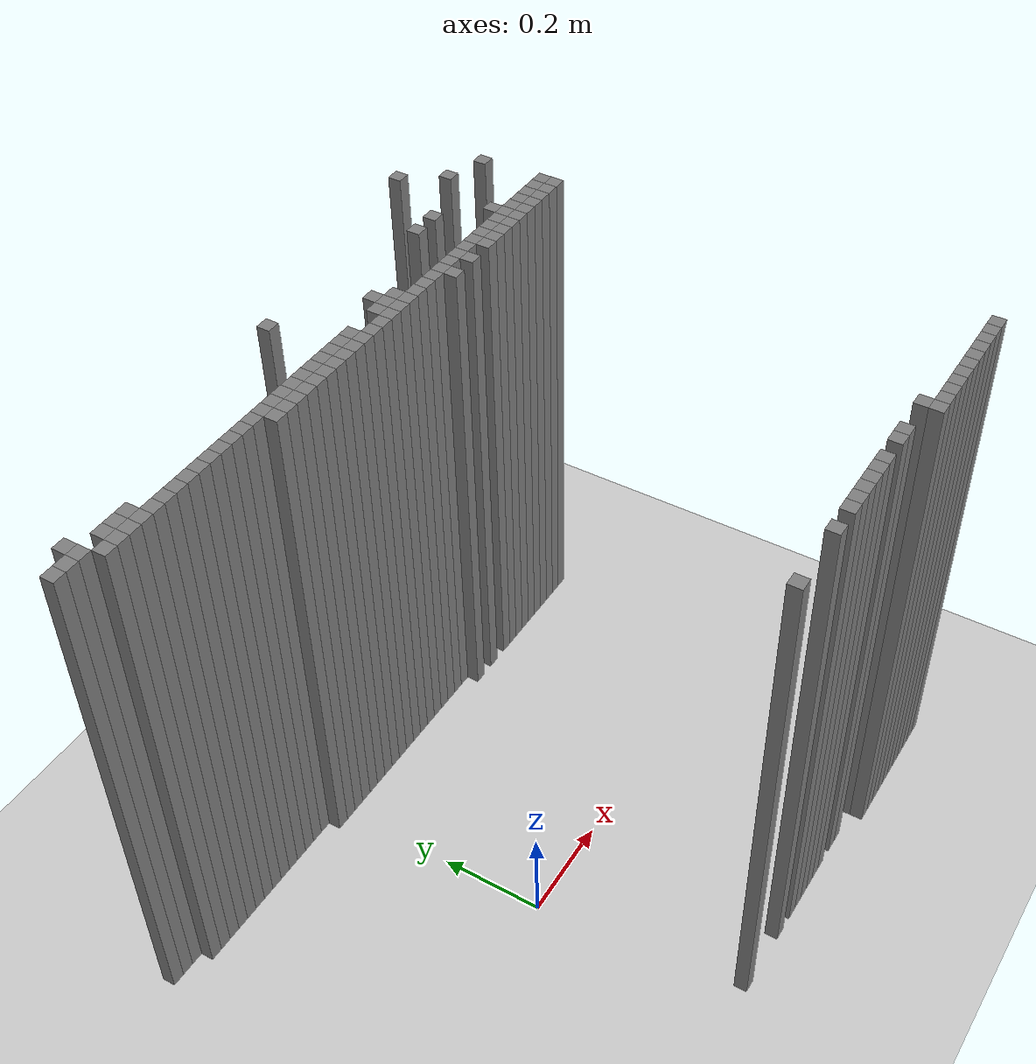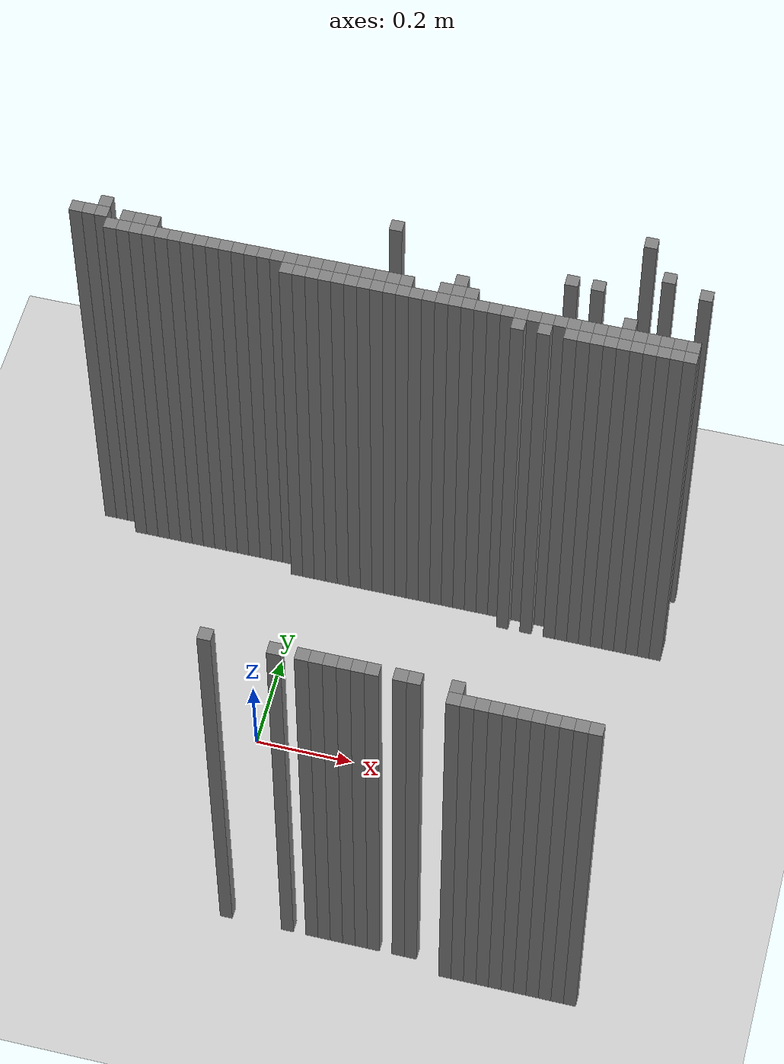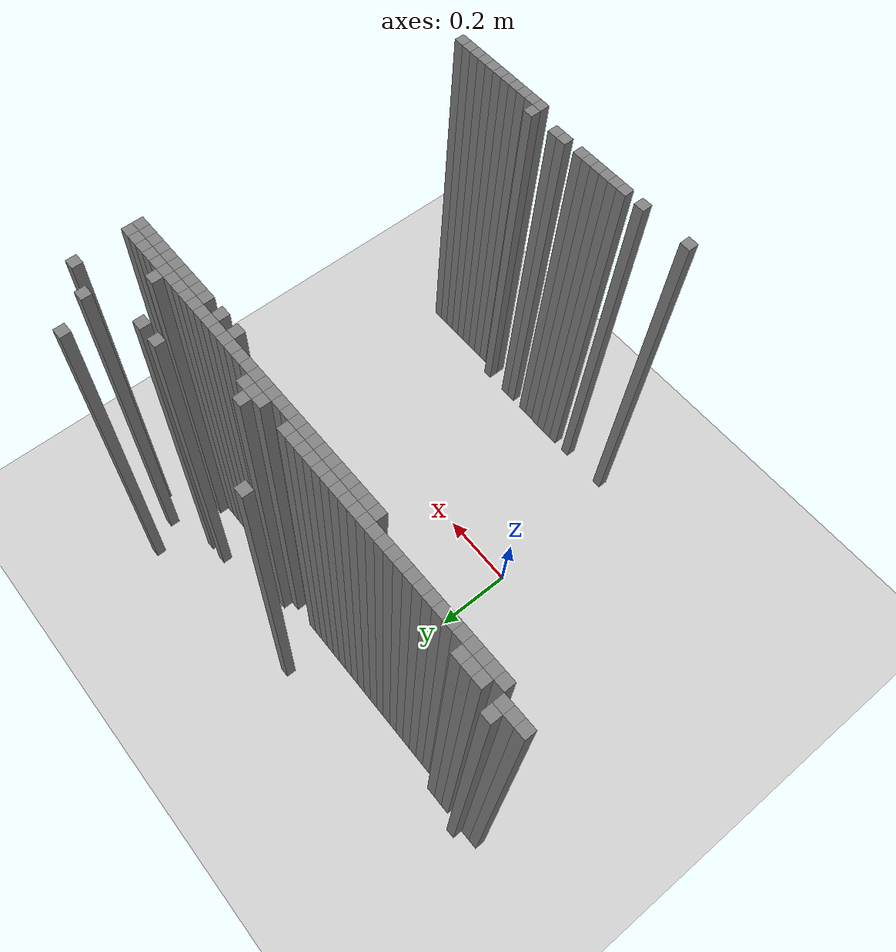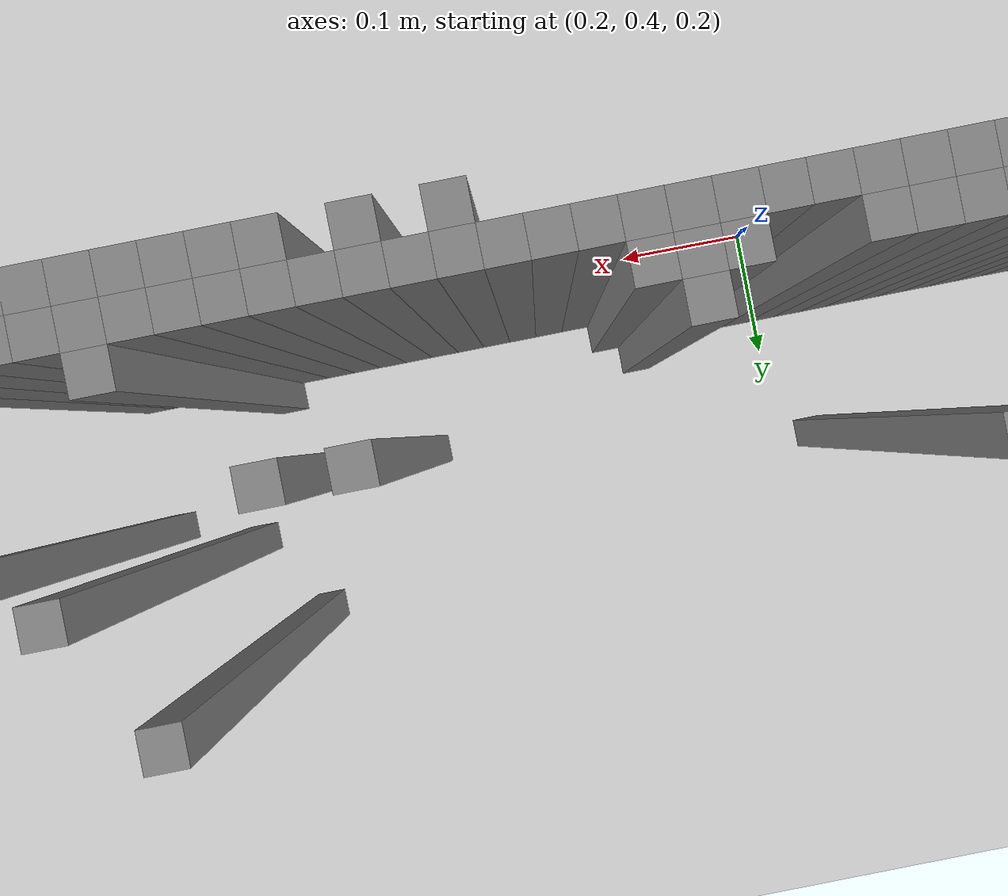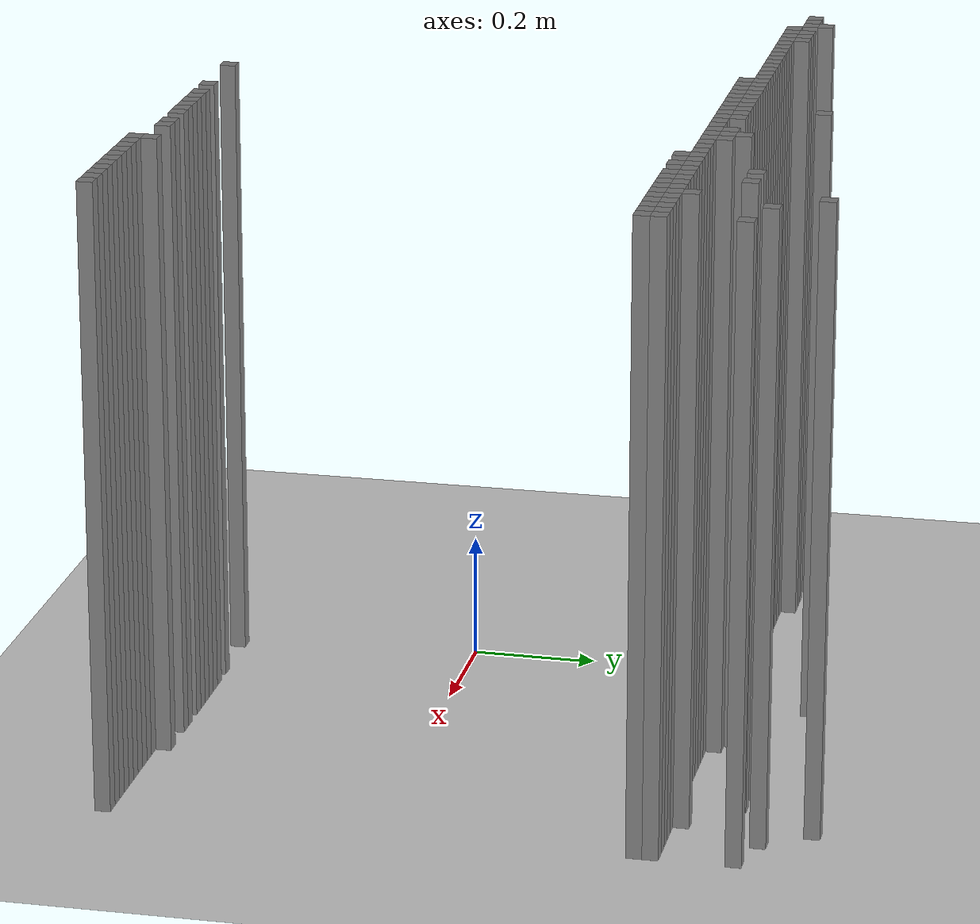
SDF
<sdf version="1.6">
 <world name="map_world">
  <include><uri>model://ground_plane</uri></include>
  <include><uri>model://sun</uri></include>
  <model name="obs_118_23">
   <static>true</static>
   <link name="link">
    <collision name="collision"><geometry><box><size>0.025 0.025 1.0</size></box></geometry></collision>
    <visual name="visual">
     <geometry><box><size>0.025 0.025 1.0</size></box></geometry>
     <material><ambient>0.5 0.5 0.5 1</ambient></material>
    </visual>
   </link>
   <pose>0.6237650000000001 0.6559290000000004 0.5 0 0 0</pose>
  </model>
  <model name="obs_99_26">
   <static>true</static>
   <link name="link">
    <collision name="collision"><geometry><box><size>0.025 0.025 1.0</size></box></geometry></collision>
    <visual name="visual">
     <geometry><box><size>0.025 0.025 1.0</size></box></geometry>
     <material><ambient>0.5 0.5 0.5 1</ambient></material>
    </visual>
   </link>
   <pose>0.14876500000000004 0.5809290000000003 0.5 0 0 0</pose>
  </model>
  <model name="obs_120_26">
   <static>true</static>
   <link name="link">
    <collision name="collision"><geometry><box><size>0.025 0.025 1.0</size></box></geometry></collision>
    <visual name="visual">
     <geometry><box><size>0.025 0.025 1.0</size></box></geometry>
     <material><ambient>0.5 0.5 0.5 1</ambient></material>
    </visual>
   </link>
   <pose>0.673765 0.5809290000000003 0.5 0 0 0</pose>
  </model>
  <model name="obs_123_27">
   <static>true</static>
   <link name="link">
    <collision name="collision"><geometry><box><size>0.025 0.025 1.0</size></box></geometry></collision>
    <visual name="visual">
     <geometry><box><size>0.025 0.025 1.0</size></box></geometry>
     <material><ambient>0.5 0.5 0.5 1</ambient></material>
    </visual>
   </link>
   <pose>0.7487650000000001 0.5559290000000003 0.5 0 0 0</pose>
  </model>
  <model name="obs_113_28">
   <static>true</static>
   <link name="link">
    <collision name="collision"><geometry><box><size>0.025 0.025 1.0</size></box></geometry></collision>
    <visual name="visual">
     <geometry><box><size>0.025 0.025 1.0</size></box></geometry>
     <material><ambient>0.5 0.5 0.5 1</ambient></material>
    </visual>
   </link>
   <pose>0.4987650000000001 0.5309290000000004 0.5 0 0 0</pose>
  </model>
  <model name="obs_115_28">
   <static>true</static>
   <link name="link">
    <collision name="collision"><geometry><box><size>0.025 0.025 1.0</size></box></geometry></collision>
    <visual name="visual">
     <geometry><box><size>0.025 0.025 1.0</size></box></geometry>
     <material><ambient>0.5 0.5 0.5 1</ambient></material>
    </visual>
   </link>
   <pose>0.548765 0.5309290000000004 0.5 0 0 0</pose>
  </model>
  <model name="obs_77_29">
   <static>true</static>
   <link name="link">
    <collision name="collision"><geometry><box><size>0.025 0.025 1.0</size></box></geometry></collision>
    <visual name="visual">
     <geometry><box><size>0.025 0.025 1.0</size></box></geometry>
     <material><ambient>0.5 0.5 0.5 1</ambient></material>
    </visual>
   </link>
   <pose>-0.401235 0.5059290000000001 0.5 0 0 0</pose>
  </model>
  <model name="obs_75_30">
   <static>true</static>
   <link name="link">
    <collision name="collision"><geometry><box><size>0.025 0.025 1.0</size></box></geometry></collision>
    <visual name="visual">
     <geometry><box><size>0.025 0.025 1.0</size></box></geometry>
     <material><ambient>0.5 0.5 0.5 1</ambient></material>
    </visual>
   </link>
   <pose>-0.45123500000000005 0.48092900000000016 0.5 0 0 0</pose>
  </model>
  <model name="obs_76_30">
   <static>true</static>
   <link name="link">
    <collision name="collision"><geometry><box><size>0.025 0.025 1.0</size></box></geometry></collision>
    <visual name="visual">
     <geometry><box><size>0.025 0.025 1.0</size></box></geometry>
     <material><ambient>0.5 0.5 0.5 1</ambient></material>
    </visual>
   </link>
   <pose>-0.4262349999999999 0.48092900000000016 0.5 0 0 0</pose>
  </model>
  <model name="obs_77_30">
   <static>true</static>
   <link name="link">
    <collision name="collision"><geometry><box><size>0.025 0.025 1.0</size></box></geometry></collision>
    <visual name="visual">
     <geometry><box><size>0.025 0.025 1.0</size></box></geometry>
     <material><ambient>0.5 0.5 0.5 1</ambient></material>
    </visual>
   </link>
   <pose>-0.401235 0.48092900000000016 0.5 0 0 0</pose>
  </model>
  <model name="obs_79_30">
   <static>true</static>
   <link name="link">
    <collision name="collision"><geometry><box><size>0.025 0.025 1.0</size></box></geometry></collision>
    <visual name="visual">
     <geometry><box><size>0.025 0.025 1.0</size></box></geometry>
     <material><ambient>0.5 0.5 0.5 1</ambient></material>
    </visual>
   </link>
   <pose>-0.35123499999999996 0.48092900000000016 0.5 0 0 0</pose>
  </model>
  <model name="obs_80_30">
   <static>true</static>
   <link name="link">
    <collision name="collision"><geometry><box><size>0.025 0.025 1.0</size></box></geometry></collision>
    <visual name="visual">
     <geometry><box><size>0.025 0.025 1.0</size></box></geometry>
     <material><ambient>0.5 0.5 0.5 1</ambient></material>
    </visual>
   </link>
   <pose>-0.32623500000000005 0.48092900000000016 0.5 0 0 0</pose>
  </model>
  <model name="obs_81_30">
   <static>true</static>
   <link name="link">
    <collision name="collision"><geometry><box><size>0.025 0.025 1.0</size></box></geometry></collision>
    <visual name="visual">
     <geometry><box><size>0.025 0.025 1.0</size></box></geometry>
     <material><ambient>0.5 0.5 0.5 1</ambient></material>
    </visual>
   </link>
   <pose>-0.30123500000000014 0.48092900000000016 0.5 0 0 0</pose>
  </model>
  <model name="obs_105_30">
   <static>true</static>
   <link name="link">
    <collision name="collision"><geometry><box><size>0.025 0.025 1.0</size></box></geometry></collision>
    <visual name="visual">
     <geometry><box><size>0.025 0.025 1.0</size></box></geometry>
     <material><ambient>0.5 0.5 0.5 1</ambient></material>
    </visual>
   </link>
   <pose>0.29876499999999995 0.48092900000000016 0.5 0 0 0</pose>
  </model>
  <model name="obs_78_31">
   <static>true</static>
   <link name="link">
    <collision name="collision"><geometry><box><size>0.025 0.025 1.0</size></box></geometry></collision>
    <visual name="visual">
     <geometry><box><size>0.025 0.025 1.0</size></box></geometry>
     <material><ambient>0.5 0.5 0.5 1</ambient></material>
    </visual>
   </link>
   <pose>-0.3762349999999999 0.45592900000000025 0.5 0 0 0</pose>
  </model>
  <model name="obs_79_31">
   <static>true</static>
   <link name="link">
    <collision name="collision"><geometry><box><size>0.025 0.025 1.0</size></box></geometry></collision>
    <visual name="visual">
     <geometry><box><size>0.025 0.025 1.0</size></box></geometry>
     <material><ambient>0.5 0.5 0.5 1</ambient></material>
    </visual>
   </link>
   <pose>-0.35123499999999996 0.45592900000000025 0.5 0 0 0</pose>
  </model>
  <model name="obs_80_31">
   <static>true</static>
   <link name="link">
    <collision name="collision"><geometry><box><size>0.025 0.025 1.0</size></box></geometry></collision>
    <visual name="visual">
     <geometry><box><size>0.025 0.025 1.0</size></box></geometry>
     <material><ambient>0.5 0.5 0.5 1</ambient></material>
    </visual>
   </link>
   <pose>-0.32623500000000005 0.45592900000000025 0.5 0 0 0</pose>
  </model>
  <model name="obs_81_31">
   <static>true</static>
   <link name="link">
    <collision name="collision"><geometry><box><size>0.025 0.025 1.0</size></box></geometry></collision>
    <visual name="visual">
     <geometry><box><size>0.025 0.025 1.0</size></box></geometry>
     <material><ambient>0.5 0.5 0.5 1</ambient></material>
    </visual>
   </link>
   <pose>-0.30123500000000014 0.45592900000000025 0.5 0 0 0</pose>
  </model>
  <model name="obs_82_31">
   <static>true</static>
   <link name="link">
    <collision name="collision"><geometry><box><size>0.025 0.025 1.0</size></box></geometry></collision>
    <visual name="visual">
     <geometry><box><size>0.025 0.025 1.0</size></box></geometry>
     <material><ambient>0.5 0.5 0.5 1</ambient></material>
    </visual>
   </link>
   <pose>-0.2762349999999998 0.45592900000000025 0.5 0 0 0</pose>
  </model>
  <model name="obs_83_31">
   <static>true</static>
   <link name="link">
    <collision name="collision"><geometry><box><size>0.025 0.025 1.0</size></box></geometry></collision>
    <visual name="visual">
     <geometry><box><size>0.025 0.025 1.0</size></box></geometry>
     <material><ambient>0.5 0.5 0.5 1</ambient></material>
    </visual>
   </link>
   <pose>-0.2512349999999999 0.45592900000000025 0.5 0 0 0</pose>
  </model>
  <model name="obs_84_31">
   <static>true</static>
   <link name="link">
    <collision name="collision"><geometry><box><size>0.025 0.025 1.0</size></box></geometry></collision>
    <visual name="visual">
     <geometry><box><size>0.025 0.025 1.0</size></box></geometry>
     <material><ambient>0.5 0.5 0.5 1</ambient></material>
    </visual>
   </link>
   <pose>-0.22623499999999996 0.45592900000000025 0.5 0 0 0</pose>
  </model>
  <model name="obs_85_31">
   <static>true</static>
   <link name="link">
    <collision name="collision"><geometry><box><size>0.025 0.025 1.0</size></box></geometry></collision>
    <visual name="visual">
     <geometry><box><size>0.025 0.025 1.0</size></box></geometry>
     <material><ambient>0.5 0.5 0.5 1</ambient></material>
    </visual>
   </link>
   <pose>-0.20123500000000005 0.45592900000000025 0.5 0 0 0</pose>
  </model>
  <model name="obs_86_31">
   <static>true</static>
   <link name="link">
    <collision name="collision"><geometry><box><size>0.025 0.025 1.0</size></box></geometry></collision>
    <visual name="visual">
     <geometry><box><size>0.025 0.025 1.0</size></box></geometry>
     <material><ambient>0.5 0.5 0.5 1</ambient></material>
    </visual>
   </link>
   <pose>-0.17623500000000014 0.45592900000000025 0.5 0 0 0</pose>
  </model>
  <model name="obs_87_31">
   <static>true</static>
   <link name="link">
    <collision name="collision"><geometry><box><size>0.025 0.025 1.0</size></box></geometry></collision>
    <visual name="visual">
     <geometry><box><size>0.025 0.025 1.0</size></box></geometry>
     <material><ambient>0.5 0.5 0.5 1</ambient></material>
    </visual>
   </link>
   <pose>-0.1512349999999998 0.45592900000000025 0.5 0 0 0</pose>
  </model>
  <model name="obs_88_31">
   <static>true</static>
   <link name="link">
    <collision name="collision"><geometry><box><size>0.025 0.025 1.0</size></box></geometry></collision>
    <visual name="visual">
     <geometry><box><size>0.025 0.025 1.0</size></box></geometry>
     <material><ambient>0.5 0.5 0.5 1</ambient></material>
    </visual>
   </link>
   <pose>-0.12623499999999988 0.45592900000000025 0.5 0 0 0</pose>
  </model>
  <model name="obs_89_31">
   <static>true</static>
   <link name="link">
    <collision name="collision"><geometry><box><size>0.025 0.025 1.0</size></box></geometry></collision>
    <visual name="visual">
     <geometry><box><size>0.025 0.025 1.0</size></box></geometry>
     <material><ambient>0.5 0.5 0.5 1</ambient></material>
    </visual>
   </link>
   <pose>-0.10123499999999996 0.45592900000000025 0.5 0 0 0</pose>
  </model>
  <model name="obs_90_31">
   <static>true</static>
   <link name="link">
    <collision name="collision"><geometry><box><size>0.025 0.025 1.0</size></box></geometry></collision>
    <visual name="visual">
     <geometry><box><size>0.025 0.025 1.0</size></box></geometry>
     <material><ambient>0.5 0.5 0.5 1</ambient></material>
    </visual>
   </link>
   <pose>-0.07623500000000005 0.45592900000000025 0.5 0 0 0</pose>
  </model>
  <model name="obs_91_31">
   <static>true</static>
   <link name="link">
    <collision name="collision"><geometry><box><size>0.025 0.025 1.0</size></box></geometry></collision>
    <visual name="visual">
     <geometry><box><size>0.025 0.025 1.0</size></box></geometry>
     <material><ambient>0.5 0.5 0.5 1</ambient></material>
    </visual>
   </link>
   <pose>-0.05123500000000014 0.45592900000000025 0.5 0 0 0</pose>
  </model>
  <model name="obs_92_31">
   <static>true</static>
   <link name="link">
    <collision name="collision"><geometry><box><size>0.025 0.025 1.0</size></box></geometry></collision>
    <visual name="visual">
     <geometry><box><size>0.025 0.025 1.0</size></box></geometry>
     <material><ambient>0.5 0.5 0.5 1</ambient></material>
    </visual>
   </link>
   <pose>-0.026234999999999786 0.45592900000000025 0.5 0 0 0</pose>
  </model>
  <model name="obs_93_31">
   <static>true</static>
   <link name="link">
    <collision name="collision"><geometry><box><size>0.025 0.025 1.0</size></box></geometry></collision>
    <visual name="visual">
     <geometry><box><size>0.025 0.025 1.0</size></box></geometry>
     <material><ambient>0.5 0.5 0.5 1</ambient></material>
    </visual>
   </link>
   <pose>-0.001234999999999875 0.45592900000000025 0.5 0 0 0</pose>
  </model>
  <model name="obs_94_31">
   <static>true</static>
   <link name="link">
    <collision name="collision"><geometry><box><size>0.025 0.025 1.0</size></box></geometry></collision>
    <visual name="visual">
     <geometry><box><size>0.025 0.025 1.0</size></box></geometry>
     <material><ambient>0.5 0.5 0.5 1</ambient></material>
    </visual>
   </link>
   <pose>0.023765000000000036 0.45592900000000025 0.5 0 0 0</pose>
  </model>
  <model name="obs_95_31">
   <static>true</static>
   <link name="link">
    <collision name="collision"><geometry><box><size>0.025 0.025 1.0</size></box></geometry></collision>
    <visual name="visual">
     <geometry><box><size>0.025 0.025 1.0</size></box></geometry>
     <material><ambient>0.5 0.5 0.5 1</ambient></material>
    </visual>
   </link>
   <pose>0.04876499999999995 0.45592900000000025 0.5 0 0 0</pose>
  </model>
  <model name="obs_96_31">
   <static>true</static>
   <link name="link">
    <collision name="collision"><geometry><box><size>0.025 0.025 1.0</size></box></geometry></collision>
    <visual name="visual">
     <geometry><box><size>0.025 0.025 1.0</size></box></geometry>
     <material><ambient>0.5 0.5 0.5 1</ambient></material>
    </visual>
   </link>
   <pose>0.0737650000000003 0.45592900000000025 0.5 0 0 0</pose>
  </model>
  <model name="obs_97_31">
   <static>true</static>
   <link name="link">
    <collision name="collision"><geometry><box><size>0.025 0.025 1.0</size></box></geometry></collision>
    <visual name="visual">
     <geometry><box><size>0.025 0.025 1.0</size></box></geometry>
     <material><ambient>0.5 0.5 0.5 1</ambient></material>
    </visual>
   </link>
   <pose>0.09876500000000021 0.45592900000000025 0.5 0 0 0</pose>
  </model>
  <model name="obs_98_31">
   <static>true</static>
   <link name="link">
    <collision name="collision"><geometry><box><size>0.025 0.025 1.0</size></box></geometry></collision>
    <visual name="visual">
     <geometry><box><size>0.025 0.025 1.0</size></box></geometry>
     <material><ambient>0.5 0.5 0.5 1</ambient></material>
    </visual>
   </link>
   <pose>0.12376500000000012 0.45592900000000025 0.5 0 0 0</pose>
  </model>
  <model name="obs_99_31">
   <static>true</static>
   <link name="link">
    <collision name="collision"><geometry><box><size>0.025 0.025 1.0</size></box></geometry></collision>
    <visual name="visual">
     <geometry><box><size>0.025 0.025 1.0</size></box></geometry>
     <material><ambient>0.5 0.5 0.5 1</ambient></material>
    </visual>
   </link>
   <pose>0.14876500000000004 0.45592900000000025 0.5 0 0 0</pose>
  </model>
  <model name="obs_100_31">
   <static>true</static>
   <link name="link">
    <collision name="collision"><geometry><box><size>0.025 0.025 1.0</size></box></geometry></collision>
    <visual name="visual">
     <geometry><box><size>0.025 0.025 1.0</size></box></geometry>
     <material><ambient>0.5 0.5 0.5 1</ambient></material>
    </visual>
   </link>
   <pose>0.17376499999999995 0.45592900000000025 0.5 0 0 0</pose>
  </model>
  <model name="obs_101_31">
   <static>true</static>
   <link name="link">
    <collision name="collision"><geometry><box><size>0.025 0.025 1.0</size></box></geometry></collision>
    <visual name="visual">
     <geometry><box><size>0.025 0.025 1.0</size></box></geometry>
     <material><ambient>0.5 0.5 0.5 1</ambient></material>
    </visual>
   </link>
   <pose>0.1987650000000003 0.45592900000000025 0.5 0 0 0</pose>
  </model>
  <model name="obs_104_31">
   <static>true</static>
   <link name="link">
    <collision name="collision"><geometry><box><size>0.025 0.025 1.0</size></box></geometry></collision>
    <visual name="visual">
     <geometry><box><size>0.025 0.025 1.0</size></box></geometry>
     <material><ambient>0.5 0.5 0.5 1</ambient></material>
    </visual>
   </link>
   <pose>0.27376500000000004 0.45592900000000025 0.5 0 0 0</pose>
  </model>
  <model name="obs_105_31">
   <static>true</static>
   <link name="link">
    <collision name="collision"><geometry><box><size>0.025 0.025 1.0</size></box></geometry></collision>
    <visual name="visual">
     <geometry><box><size>0.025 0.025 1.0</size></box></geometry>
     <material><ambient>0.5 0.5 0.5 1</ambient></material>
    </visual>
   </link>
   <pose>0.29876499999999995 0.45592900000000025 0.5 0 0 0</pose>
  </model>
  <model name="obs_106_31">
   <static>true</static>
   <link name="link">
    <collision name="collision"><geometry><box><size>0.025 0.025 1.0</size></box></geometry></collision>
    <visual name="visual">
     <geometry><box><size>0.025 0.025 1.0</size></box></geometry>
     <material><ambient>0.5 0.5 0.5 1</ambient></material>
    </visual>
   </link>
   <pose>0.3237650000000003 0.45592900000000025 0.5 0 0 0</pose>
  </model>
  <model name="obs_118_31">
   <static>true</static>
   <link name="link">
    <collision name="collision"><geometry><box><size>0.025 0.025 1.0</size></box></geometry></collision>
    <visual name="visual">
     <geometry><box><size>0.025 0.025 1.0</size></box></geometry>
     <material><ambient>0.5 0.5 0.5 1</ambient></material>
    </visual>
   </link>
   <pose>0.6237650000000001 0.45592900000000025 0.5 0 0 0</pose>
  </model>
  <model name="obs_92_32">
   <static>true</static>
   <link name="link">
    <collision name="collision"><geometry><box><size>0.025 0.025 1.0</size></box></geometry></collision>
    <visual name="visual">
     <geometry><box><size>0.025 0.025 1.0</size></box></geometry>
     <material><ambient>0.5 0.5 0.5 1</ambient></material>
    </visual>
   </link>
   <pose>-0.026234999999999786 0.43092900000000034 0.5 0 0 0</pose>
  </model>
  <model name="obs_93_32">
   <static>true</static>
   <link name="link">
    <collision name="collision"><geometry><box><size>0.025 0.025 1.0</size></box></geometry></collision>
    <visual name="visual">
     <geometry><box><size>0.025 0.025 1.0</size></box></geometry>
     <material><ambient>0.5 0.5 0.5 1</ambient></material>
    </visual>
   </link>
   <pose>-0.001234999999999875 0.43092900000000034 0.5 0 0 0</pose>
  </model>
  <model name="obs_94_32">
   <static>true</static>
   <link name="link">
    <collision name="collision"><geometry><box><size>0.025 0.025 1.0</size></box></geometry></collision>
    <visual name="visual">
     <geometry><box><size>0.025 0.025 1.0</size></box></geometry>
     <material><ambient>0.5 0.5 0.5 1</ambient></material>
    </visual>
   </link>
   <pose>0.023765000000000036 0.43092900000000034 0.5 0 0 0</pose>
  </model>
  <model name="obs_95_32">
   <static>true</static>
   <link name="link">
    <collision name="collision"><geometry><box><size>0.025 0.025 1.0</size></box></geometry></collision>
    <visual name="visual">
     <geometry><box><size>0.025 0.025 1.0</size></box></geometry>
     <material><ambient>0.5 0.5 0.5 1</ambient></material>
    </visual>
   </link>
   <pose>0.04876499999999995 0.43092900000000034 0.5 0 0 0</pose>
  </model>
  <model name="obs_96_32">
   <static>true</static>
   <link name="link">
    <collision name="collision"><geometry><box><size>0.025 0.025 1.0</size></box></geometry></collision>
    <visual name="visual">
     <geometry><box><size>0.025 0.025 1.0</size></box></geometry>
     <material><ambient>0.5 0.5 0.5 1</ambient></material>
    </visual>
   </link>
   <pose>0.0737650000000003 0.43092900000000034 0.5 0 0 0</pose>
  </model>
  <model name="obs_97_32">
   <static>true</static>
   <link name="link">
    <collision name="collision"><geometry><box><size>0.025 0.025 1.0</size></box></geometry></collision>
    <visual name="visual">
     <geometry><box><size>0.025 0.025 1.0</size></box></geometry>
     <material><ambient>0.5 0.5 0.5 1</ambient></material>
    </visual>
   </link>
   <pose>0.09876500000000021 0.43092900000000034 0.5 0 0 0</pose>
  </model>
  <model name="obs_98_32">
   <static>true</static>
   <link name="link">
    <collision name="collision"><geometry><box><size>0.025 0.025 1.0</size></box></geometry></collision>
    <visual name="visual">
     <geometry><box><size>0.025 0.025 1.0</size></box></geometry>
     <material><ambient>0.5 0.5 0.5 1</ambient></material>
    </visual>
   </link>
   <pose>0.12376500000000012 0.43092900000000034 0.5 0 0 0</pose>
  </model>
  <model name="obs_99_32">
   <static>true</static>
   <link name="link">
    <collision name="collision"><geometry><box><size>0.025 0.025 1.0</size></box></geometry></collision>
    <visual name="visual">
     <geometry><box><size>0.025 0.025 1.0</size></box></geometry>
     <material><ambient>0.5 0.5 0.5 1</ambient></material>
    </visual>
   </link>
   <pose>0.14876500000000004 0.43092900000000034 0.5 0 0 0</pose>
  </model>
  <model name="obs_100_32">
   <static>true</static>
   <link name="link">
    <collision name="collision"><geometry><box><size>0.025 0.025 1.0</size></box></geometry></collision>
    <visual name="visual">
     <geometry><box><size>0.025 0.025 1.0</size></box></geometry>
     <material><ambient>0.5 0.5 0.5 1</ambient></material>
    </visual>
   </link>
   <pose>0.17376499999999995 0.43092900000000034 0.5 0 0 0</pose>
  </model>
  <model name="obs_101_32">
   <static>true</static>
   <link name="link">
    <collision name="collision"><geometry><box><size>0.025 0.025 1.0</size></box></geometry></collision>
    <visual name="visual">
     <geometry><box><size>0.025 0.025 1.0</size></box></geometry>
     <material><ambient>0.5 0.5 0.5 1</ambient></material>
    </visual>
   </link>
   <pose>0.1987650000000003 0.43092900000000034 0.5 0 0 0</pose>
  </model>
  <model name="obs_102_32">
   <static>true</static>
   <link name="link">
    <collision name="collision"><geometry><box><size>0.025 0.025 1.0</size></box></geometry></collision>
    <visual name="visual">
     <geometry><box><size>0.025 0.025 1.0</size></box></geometry>
     <material><ambient>0.5 0.5 0.5 1</ambient></material>
    </visual>
   </link>
   <pose>0.2237650000000002 0.43092900000000034 0.5 0 0 0</pose>
  </model>
  <model name="obs_103_32">
   <static>true</static>
   <link name="link">
    <collision name="collision"><geometry><box><size>0.025 0.025 1.0</size></box></geometry></collision>
    <visual name="visual">
     <geometry><box><size>0.025 0.025 1.0</size></box></geometry>
     <material><ambient>0.5 0.5 0.5 1</ambient></material>
    </visual>
   </link>
   <pose>0.24876500000000012 0.43092900000000034 0.5 0 0 0</pose>
  </model>
  <model name="obs_104_32">
   <static>true</static>
   <link name="link">
    <collision name="collision"><geometry><box><size>0.025 0.025 1.0</size></box></geometry></collision>
    <visual name="visual">
     <geometry><box><size>0.025 0.025 1.0</size></box></geometry>
     <material><ambient>0.5 0.5 0.5 1</ambient></material>
    </visual>
   </link>
   <pose>0.27376500000000004 0.43092900000000034 0.5 0 0 0</pose>
  </model>
  <model name="obs_105_32">
   <static>true</static>
   <link name="link">
    <collision name="collision"><geometry><box><size>0.025 0.025 1.0</size></box></geometry></collision>
    <visual name="visual">
     <geometry><box><size>0.025 0.025 1.0</size></box></geometry>
     <material><ambient>0.5 0.5 0.5 1</ambient></material>
    </visual>
   </link>
   <pose>0.29876499999999995 0.43092900000000034 0.5 0 0 0</pose>
  </model>
  <model name="obs_106_32">
   <static>true</static>
   <link name="link">
    <collision name="collision"><geometry><box><size>0.025 0.025 1.0</size></box></geometry></collision>
    <visual name="visual">
     <geometry><box><size>0.025 0.025 1.0</size></box></geometry>
     <material><ambient>0.5 0.5 0.5 1</ambient></material>
    </visual>
   </link>
   <pose>0.3237650000000003 0.43092900000000034 0.5 0 0 0</pose>
  </model>
  <model name="obs_107_32">
   <static>true</static>
   <link name="link">
    <collision name="collision"><geometry><box><size>0.025 0.025 1.0</size></box></geometry></collision>
    <visual name="visual">
     <geometry><box><size>0.025 0.025 1.0</size></box></geometry>
     <material><ambient>0.5 0.5 0.5 1</ambient></material>
    </visual>
   </link>
   <pose>0.3487650000000002 0.43092900000000034 0.5 0 0 0</pose>
  </model>
  <model name="obs_108_32">
   <static>true</static>
   <link name="link">
    <collision name="collision"><geometry><box><size>0.025 0.025 1.0</size></box></geometry></collision>
    <visual name="visual">
     <geometry><box><size>0.025 0.025 1.0</size></box></geometry>
     <material><ambient>0.5 0.5 0.5 1</ambient></material>
    </visual>
   </link>
   <pose>0.3737650000000001 0.43092900000000034 0.5 0 0 0</pose>
  </model>
  <model name="obs_109_32">
   <static>true</static>
   <link name="link">
    <collision name="collision"><geometry><box><size>0.025 0.025 1.0</size></box></geometry></collision>
    <visual name="visual">
     <geometry><box><size>0.025 0.025 1.0</size></box></geometry>
     <material><ambient>0.5 0.5 0.5 1</ambient></material>
    </visual>
   </link>
   <pose>0.39876500000000004 0.43092900000000034 0.5 0 0 0</pose>
  </model>
  <model name="obs_110_32">
   <static>true</static>
   <link name="link">
    <collision name="collision"><geometry><box><size>0.025 0.025 1.0</size></box></geometry></collision>
    <visual name="visual">
     <geometry><box><size>0.025 0.025 1.0</size></box></geometry>
     <material><ambient>0.5 0.5 0.5 1</ambient></material>
    </visual>
   </link>
   <pose>0.42376499999999995 0.43092900000000034 0.5 0 0 0</pose>
  </model>
  <model name="obs_111_32">
   <static>true</static>
   <link name="link">
    <collision name="collision"><geometry><box><size>0.025 0.025 1.0</size></box></geometry></collision>
    <visual name="visual">
     <geometry><box><size>0.025 0.025 1.0</size></box></geometry>
     <material><ambient>0.5 0.5 0.5 1</ambient></material>
    </visual>
   </link>
   <pose>0.4487650000000003 0.43092900000000034 0.5 0 0 0</pose>
  </model>
  <model name="obs_112_32">
   <static>true</static>
   <link name="link">
    <collision name="collision"><geometry><box><size>0.025 0.025 1.0</size></box></geometry></collision>
    <visual name="visual">
     <geometry><box><size>0.025 0.025 1.0</size></box></geometry>
     <material><ambient>0.5 0.5 0.5 1</ambient></material>
    </visual>
   </link>
   <pose>0.4737650000000002 0.43092900000000034 0.5 0 0 0</pose>
  </model>
  <model name="obs_113_32">
   <static>true</static>
   <link name="link">
    <collision name="collision"><geometry><box><size>0.025 0.025 1.0</size></box></geometry></collision>
    <visual name="visual">
     <geometry><box><size>0.025 0.025 1.0</size></box></geometry>
     <material><ambient>0.5 0.5 0.5 1</ambient></material>
    </visual>
   </link>
   <pose>0.4987650000000001 0.43092900000000034 0.5 0 0 0</pose>
  </model>
  <model name="obs_114_32">
   <static>true</static>
   <link name="link">
    <collision name="collision"><geometry><box><size>0.025 0.025 1.0</size></box></geometry></collision>
    <visual name="visual">
     <geometry><box><size>0.025 0.025 1.0</size></box></geometry>
     <material><ambient>0.5 0.5 0.5 1</ambient></material>
    </visual>
   </link>
   <pose>0.523765 0.43092900000000034 0.5 0 0 0</pose>
  </model>
  <model name="obs_115_32">
   <static>true</static>
   <link name="link">
    <collision name="collision"><geometry><box><size>0.025 0.025 1.0</size></box></geometry></collision>
    <visual name="visual">
     <geometry><box><size>0.025 0.025 1.0</size></box></geometry>
     <material><ambient>0.5 0.5 0.5 1</ambient></material>
    </visual>
   </link>
   <pose>0.548765 0.43092900000000034 0.5 0 0 0</pose>
  </model>
  <model name="obs_116_32">
   <static>true</static>
   <link name="link">
    <collision name="collision"><geometry><box><size>0.025 0.025 1.0</size></box></geometry></collision>
    <visual name="visual">
     <geometry><box><size>0.025 0.025 1.0</size></box></geometry>
     <material><ambient>0.5 0.5 0.5 1</ambient></material>
    </visual>
   </link>
   <pose>0.5737650000000003 0.43092900000000034 0.5 0 0 0</pose>
  </model>
  <model name="obs_117_32">
   <static>true</static>
   <link name="link">
    <collision name="collision"><geometry><box><size>0.025 0.025 1.0</size></box></geometry></collision>
    <visual name="visual">
     <geometry><box><size>0.025 0.025 1.0</size></box></geometry>
     <material><ambient>0.5 0.5 0.5 1</ambient></material>
    </visual>
   </link>
   <pose>0.5987650000000002 0.43092900000000034 0.5 0 0 0</pose>
  </model>
  <model name="obs_118_32">
   <static>true</static>
   <link name="link">
    <collision name="collision"><geometry><box><size>0.025 0.025 1.0</size></box></geometry></collision>
    <visual name="visual">
     <geometry><box><size>0.025 0.025 1.0</size></box></geometry>
     <material><ambient>0.5 0.5 0.5 1</ambient></material>
    </visual>
   </link>
   <pose>0.6237650000000001 0.43092900000000034 0.5 0 0 0</pose>
  </model>
  <model name="obs_119_32">
   <static>true</static>
   <link name="link">
    <collision name="collision"><geometry><box><size>0.025 0.025 1.0</size></box></geometry></collision>
    <visual name="visual">
     <geometry><box><size>0.025 0.025 1.0</size></box></geometry>
     <material><ambient>0.5 0.5 0.5 1</ambient></material>
    </visual>
   </link>
   <pose>0.648765 0.43092900000000034 0.5 0 0 0</pose>
  </model>
  <model name="obs_120_32">
   <static>true</static>
   <link name="link">
    <collision name="collision"><geometry><box><size>0.025 0.025 1.0</size></box></geometry></collision>
    <visual name="visual">
     <geometry><box><size>0.025 0.025 1.0</size></box></geometry>
     <material><ambient>0.5 0.5 0.5 1</ambient></material>
    </visual>
   </link>
   <pose>0.673765 0.43092900000000034 0.5 0 0 0</pose>
  </model>
  <model name="obs_121_32">
   <static>true</static>
   <link name="link">
    <collision name="collision"><geometry><box><size>0.025 0.025 1.0</size></box></geometry></collision>
    <visual name="visual">
     <geometry><box><size>0.025 0.025 1.0</size></box></geometry>
     <material><ambient>0.5 0.5 0.5 1</ambient></material>
    </visual>
   </link>
   <pose>0.6987650000000003 0.43092900000000034 0.5 0 0 0</pose>
  </model>
  <model name="obs_122_32">
   <static>true</static>
   <link name="link">
    <collision name="collision"><geometry><box><size>0.025 0.025 1.0</size></box></geometry></collision>
    <visual name="visual">
     <geometry><box><size>0.025 0.025 1.0</size></box></geometry>
     <material><ambient>0.5 0.5 0.5 1</ambient></material>
    </visual>
   </link>
   <pose>0.7237650000000002 0.43092900000000034 0.5 0 0 0</pose>
  </model>
  <model name="obs_123_32">
   <static>true</static>
   <link name="link">
    <collision name="collision"><geometry><box><size>0.025 0.025 1.0</size></box></geometry></collision>
    <visual name="visual">
     <geometry><box><size>0.025 0.025 1.0</size></box></geometry>
     <material><ambient>0.5 0.5 0.5 1</ambient></material>
    </visual>
   </link>
   <pose>0.7487650000000001 0.43092900000000034 0.5 0 0 0</pose>
  </model>
  <model name="obs_110_33">
   <static>true</static>
   <link name="link">
    <collision name="collision"><geometry><box><size>0.025 0.025 1.0</size></box></geometry></collision>
    <visual name="visual">
     <geometry><box><size>0.025 0.025 1.0</size></box></geometry>
     <material><ambient>0.5 0.5 0.5 1</ambient></material>
    </visual>
   </link>
   <pose>0.42376499999999995 0.40592900000000043 0.5 0 0 0</pose>
  </model>
  <model name="obs_112_33">
   <static>true</static>
   <link name="link">
    <collision name="collision"><geometry><box><size>0.025 0.025 1.0</size></box></geometry></collision>
    <visual name="visual">
     <geometry><box><size>0.025 0.025 1.0</size></box></geometry>
     <material><ambient>0.5 0.5 0.5 1</ambient></material>
    </visual>
   </link>
   <pose>0.4737650000000002 0.40592900000000043 0.5 0 0 0</pose>
  </model>
  <model name="obs_114_33">
   <static>true</static>
   <link name="link">
    <collision name="collision"><geometry><box><size>0.025 0.025 1.0</size></box></geometry></collision>
    <visual name="visual">
     <geometry><box><size>0.025 0.025 1.0</size></box></geometry>
     <material><ambient>0.5 0.5 0.5 1</ambient></material>
    </visual>
   </link>
   <pose>0.523765 0.40592900000000043 0.5 0 0 0</pose>
  </model>
  <model name="obs_115_33">
   <static>true</static>
   <link name="link">
    <collision name="collision"><geometry><box><size>0.025 0.025 1.0</size></box></geometry></collision>
    <visual name="visual">
     <geometry><box><size>0.025 0.025 1.0</size></box></geometry>
     <material><ambient>0.5 0.5 0.5 1</ambient></material>
    </visual>
   </link>
   <pose>0.548765 0.40592900000000043 0.5 0 0 0</pose>
  </model>
  <model name="obs_116_33">
   <static>true</static>
   <link name="link">
    <collision name="collision"><geometry><box><size>0.025 0.025 1.0</size></box></geometry></collision>
    <visual name="visual">
     <geometry><box><size>0.025 0.025 1.0</size></box></geometry>
     <material><ambient>0.5 0.5 0.5 1</ambient></material>
    </visual>
   </link>
   <pose>0.5737650000000003 0.40592900000000043 0.5 0 0 0</pose>
  </model>
  <model name="obs_117_33">
   <static>true</static>
   <link name="link">
    <collision name="collision"><geometry><box><size>0.025 0.025 1.0</size></box></geometry></collision>
    <visual name="visual">
     <geometry><box><size>0.025 0.025 1.0</size></box></geometry>
     <material><ambient>0.5 0.5 0.5 1</ambient></material>
    </visual>
   </link>
   <pose>0.5987650000000002 0.40592900000000043 0.5 0 0 0</pose>
  </model>
  <model name="obs_118_33">
   <static>true</static>
   <link name="link">
    <collision name="collision"><geometry><box><size>0.025 0.025 1.0</size></box></geometry></collision>
    <visual name="visual">
     <geometry><box><size>0.025 0.025 1.0</size></box></geometry>
     <material><ambient>0.5 0.5 0.5 1</ambient></material>
    </visual>
   </link>
   <pose>0.6237650000000001 0.40592900000000043 0.5 0 0 0</pose>
  </model>
  <model name="obs_119_33">
   <static>true</static>
   <link name="link">
    <collision name="collision"><geometry><box><size>0.025 0.025 1.0</size></box></geometry></collision>
    <visual name="visual">
     <geometry><box><size>0.025 0.025 1.0</size></box></geometry>
     <material><ambient>0.5 0.5 0.5 1</ambient></material>
    </visual>
   </link>
   <pose>0.648765 0.40592900000000043 0.5 0 0 0</pose>
  </model>
  <model name="obs_120_33">
   <static>true</static>
   <link name="link">
    <collision name="collision"><geometry><box><size>0.025 0.025 1.0</size></box></geometry></collision>
    <visual name="visual">
     <geometry><box><size>0.025 0.025 1.0</size></box></geometry>
     <material><ambient>0.5 0.5 0.5 1</ambient></material>
    </visual>
   </link>
   <pose>0.673765 0.40592900000000043 0.5 0 0 0</pose>
  </model>
  <model name="obs_121_33">
   <static>true</static>
   <link name="link">
    <collision name="collision"><geometry><box><size>0.025 0.025 1.0</size></box></geometry></collision>
    <visual name="visual">
     <geometry><box><size>0.025 0.025 1.0</size></box></geometry>
     <material><ambient>0.5 0.5 0.5 1</ambient></material>
    </visual>
   </link>
   <pose>0.6987650000000003 0.40592900000000043 0.5 0 0 0</pose>
  </model>
  <model name="obs_122_33">
   <static>true</static>
   <link name="link">
    <collision name="collision"><geometry><box><size>0.025 0.025 1.0</size></box></geometry></collision>
    <visual name="visual">
     <geometry><box><size>0.025 0.025 1.0</size></box></geometry>
     <material><ambient>0.5 0.5 0.5 1</ambient></material>
    </visual>
   </link>
   <pose>0.7237650000000002 0.40592900000000043 0.5 0 0 0</pose>
  </model>
  <model name="obs_123_33">
   <static>true</static>
   <link name="link">
    <collision name="collision"><geometry><box><size>0.025 0.025 1.0</size></box></geometry></collision>
    <visual name="visual">
     <geometry><box><size>0.025 0.025 1.0</size></box></geometry>
     <material><ambient>0.5 0.5 0.5 1</ambient></material>
    </visual>
   </link>
   <pose>0.7487650000000001 0.40592900000000043 0.5 0 0 0</pose>
  </model>
  <model name="obs_95_65">
   <static>true</static>
   <link name="link">
    <collision name="collision"><geometry><box><size>0.025 0.025 1.0</size></box></geometry></collision>
    <visual name="visual">
     <geometry><box><size>0.025 0.025 1.0</size></box></geometry>
     <material><ambient>0.5 0.5 0.5 1</ambient></material>
    </visual>
   </link>
   <pose>0.04876499999999995 -0.39407099999999984 0.5 0 0 0</pose>
  </model>
  <model name="obs_100_65">
   <static>true</static>
   <link name="link">
    <collision name="collision"><geometry><box><size>0.025 0.025 1.0</size></box></geometry></collision>
    <visual name="visual">
     <geometry><box><size>0.025 0.025 1.0</size></box></geometry>
     <material><ambient>0.5 0.5 0.5 1</ambient></material>
    </visual>
   </link>
   <pose>0.17376499999999995 -0.39407099999999984 0.5 0 0 0</pose>
  </model>
  <model name="obs_102_65">
   <static>true</static>
   <link name="link">
    <collision name="collision"><geometry><box><size>0.025 0.025 1.0</size></box></geometry></collision>
    <visual name="visual">
     <geometry><box><size>0.025 0.025 1.0</size></box></geometry>
     <material><ambient>0.5 0.5 0.5 1</ambient></material>
    </visual>
   </link>
   <pose>0.2237650000000002 -0.39407099999999984 0.5 0 0 0</pose>
  </model>
  <model name="obs_103_65">
   <static>true</static>
   <link name="link">
    <collision name="collision"><geometry><box><size>0.025 0.025 1.0</size></box></geometry></collision>
    <visual name="visual">
     <geometry><box><size>0.025 0.025 1.0</size></box></geometry>
     <material><ambient>0.5 0.5 0.5 1</ambient></material>
    </visual>
   </link>
   <pose>0.24876500000000012 -0.39407099999999984 0.5 0 0 0</pose>
  </model>
  <model name="obs_104_65">
   <static>true</static>
   <link name="link">
    <collision name="collision"><geometry><box><size>0.025 0.025 1.0</size></box></geometry></collision>
    <visual name="visual">
     <geometry><box><size>0.025 0.025 1.0</size></box></geometry>
     <material><ambient>0.5 0.5 0.5 1</ambient></material>
    </visual>
   </link>
   <pose>0.27376500000000004 -0.39407099999999984 0.5 0 0 0</pose>
  </model>
  <model name="obs_105_65">
   <static>true</static>
   <link name="link">
    <collision name="collision"><geometry><box><size>0.025 0.025 1.0</size></box></geometry></collision>
    <visual name="visual">
     <geometry><box><size>0.025 0.025 1.0</size></box></geometry>
     <material><ambient>0.5 0.5 0.5 1</ambient></material>
    </visual>
   </link>
   <pose>0.29876499999999995 -0.39407099999999984 0.5 0 0 0</pose>
  </model>
  <model name="obs_106_65">
   <static>true</static>
   <link name="link">
    <collision name="collision"><geometry><box><size>0.025 0.025 1.0</size></box></geometry></collision>
    <visual name="visual">
     <geometry><box><size>0.025 0.025 1.0</size></box></geometry>
     <material><ambient>0.5 0.5 0.5 1</ambient></material>
    </visual>
   </link>
   <pose>0.3237650000000003 -0.39407099999999984 0.5 0 0 0</pose>
  </model>
  <model name="obs_107_65">
   <static>true</static>
   <link name="link">
    <collision name="collision"><geometry><box><size>0.025 0.025 1.0</size></box></geometry></collision>
    <visual name="visual">
     <geometry><box><size>0.025 0.025 1.0</size></box></geometry>
     <material><ambient>0.5 0.5 0.5 1</ambient></material>
    </visual>
   </link>
   <pose>0.3487650000000002 -0.39407099999999984 0.5 0 0 0</pose>
  </model>
  <model name="obs_109_65">
   <static>true</static>
   <link name="link">
    <collision name="collision"><geometry><box><size>0.025 0.025 1.0</size></box></geometry></collision>
    <visual name="visual">
     <geometry><box><size>0.025 0.025 1.0</size></box></geometry>
     <material><ambient>0.5 0.5 0.5 1</ambient></material>
    </visual>
   </link>
   <pose>0.39876500000000004 -0.39407099999999984 0.5 0 0 0</pose>
  </model>
  <model name="obs_110_65">
   <static>true</static>
   <link name="link">
    <collision name="collision"><geometry><box><size>0.025 0.025 1.0</size></box></geometry></collision>
    <visual name="visual">
     <geometry><box><size>0.025 0.025 1.0</size></box></geometry>
     <material><ambient>0.5 0.5 0.5 1</ambient></material>
    </visual>
   </link>
   <pose>0.42376499999999995 -0.39407099999999984 0.5 0 0 0</pose>
  </model>
  <model name="obs_113_65">
   <static>true</static>
   <link name="link">
    <collision name="collision"><geometry><box><size>0.025 0.025 1.0</size></box></geometry></collision>
    <visual name="visual">
     <geometry><box><size>0.025 0.025 1.0</size></box></geometry>
     <material><ambient>0.5 0.5 0.5 1</ambient></material>
    </visual>
   </link>
   <pose>0.4987650000000001 -0.39407099999999984 0.5 0 0 0</pose>
  </model>
  <model name="obs_113_66">
   <static>true</static>
   <link name="link">
    <collision name="collision"><geometry><box><size>0.025 0.025 1.0</size></box></geometry></collision>
    <visual name="visual">
     <geometry><box><size>0.025 0.025 1.0</size></box></geometry>
     <material><ambient>0.5 0.5 0.5 1</ambient></material>
    </visual>
   </link>
   <pose>0.4987650000000001 -0.41907099999999975 0.5 0 0 0</pose>
  </model>
  <model name="obs_114_66">
   <static>true</static>
   <link name="link">
    <collision name="collision"><geometry><box><size>0.025 0.025 1.0</size></box></geometry></collision>
    <visual name="visual">
     <geometry><box><size>0.025 0.025 1.0</size></box></geometry>
     <material><ambient>0.5 0.5 0.5 1</ambient></material>
    </visual>
   </link>
   <pose>0.523765 -0.41907099999999975 0.5 0 0 0</pose>
  </model>
  <model name="obs_115_66">
   <static>true</static>
   <link name="link">
    <collision name="collision"><geometry><box><size>0.025 0.025 1.0</size></box></geometry></collision>
    <visual name="visual">
     <geometry><box><size>0.025 0.025 1.0</size></box></geometry>
     <material><ambient>0.5 0.5 0.5 1</ambient></material>
    </visual>
   </link>
   <pose>0.548765 -0.41907099999999975 0.5 0 0 0</pose>
  </model>
  <model name="obs_116_66">
   <static>true</static>
   <link name="link">
    <collision name="collision"><geometry><box><size>0.025 0.025 1.0</size></box></geometry></collision>
    <visual name="visual">
     <geometry><box><size>0.025 0.025 1.0</size></box></geometry>
     <material><ambient>0.5 0.5 0.5 1</ambient></material>
    </visual>
   </link>
   <pose>0.5737650000000003 -0.41907099999999975 0.5 0 0 0</pose>
  </model>
  <model name="obs_117_66">
   <static>true</static>
   <link name="link">
    <collision name="collision"><geometry><box><size>0.025 0.025 1.0</size></box></geometry></collision>
    <visual name="visual">
     <geometry><box><size>0.025 0.025 1.0</size></box></geometry>
     <material><ambient>0.5 0.5 0.5 1</ambient></material>
    </visual>
   </link>
   <pose>0.5987650000000002 -0.41907099999999975 0.5 0 0 0</pose>
  </model>
  <model name="obs_118_66">
   <static>true</static>
   <link name="link">
    <collision name="collision"><geometry><box><size>0.025 0.025 1.0</size></box></geometry></collision>
    <visual name="visual">
     <geometry><box><size>0.025 0.025 1.0</size></box></geometry>
     <material><ambient>0.5 0.5 0.5 1</ambient></material>
    </visual>
   </link>
   <pose>0.6237650000000001 -0.41907099999999975 0.5 0 0 0</pose>
  </model>
  <model name="obs_119_66">
   <static>true</static>
   <link name="link">
    <collision name="collision"><geometry><box><size>0.025 0.025 1.0</size></box></geometry></collision>
    <visual name="visual">
     <geometry><box><size>0.025 0.025 1.0</size></box></geometry>
     <material><ambient>0.5 0.5 0.5 1</ambient></material>
    </visual>
   </link>
   <pose>0.648765 -0.41907099999999975 0.5 0 0 0</pose>
  </model>
  <model name="obs_120_66">
   <static>true</static>
   <link name="link">
    <collision name="collision"><geometry><box><size>0.025 0.025 1.0</size></box></geometry></collision>
    <visual name="visual">
     <geometry><box><size>0.025 0.025 1.0</size></box></geometry>
     <material><ambient>0.5 0.5 0.5 1</ambient></material>
    </visual>
   </link>
   <pose>0.673765 -0.41907099999999975 0.5 0 0 0</pose>
  </model>
  <model name="obs_121_66">
   <static>true</static>
   <link name="link">
    <collision name="collision"><geometry><box><size>0.025 0.025 1.0</size></box></geometry></collision>
    <visual name="visual">
     <geometry><box><size>0.025 0.025 1.0</size></box></geometry>
     <material><ambient>0.5 0.5 0.5 1</ambient></material>
    </visual>
   </link>
   <pose>0.6987650000000003 -0.41907099999999975 0.5 0 0 0</pose>
  </model>
  <model name="obs_122_66">
   <static>true</static>
   <link name="link">
    <collision name="collision"><geometry><box><size>0.025 0.025 1.0</size></box></geometry></collision>
    <visual name="visual">
     <geometry><box><size>0.025 0.025 1.0</size></box></geometry>
     <material><ambient>0.5 0.5 0.5 1</ambient></material>
    </visual>
   </link>
   <pose>0.7237650000000002 -0.41907099999999975 0.5 0 0 0</pose>
  </model>
  <model name="obs_123_66">
   <static>true</static>
   <link name="link">
    <collision name="collision"><geometry><box><size>0.025 0.025 1.0</size></box></geometry></collision>
    <visual name="visual">
     <geometry><box><size>0.025 0.025 1.0</size></box></geometry>
     <material><ambient>0.5 0.5 0.5 1</ambient></material>
    </visual>
   </link>
   <pose>0.7487650000000001 -0.41907099999999975 0.5 0 0 0</pose>
  </model>
 </world>
</sdf>
